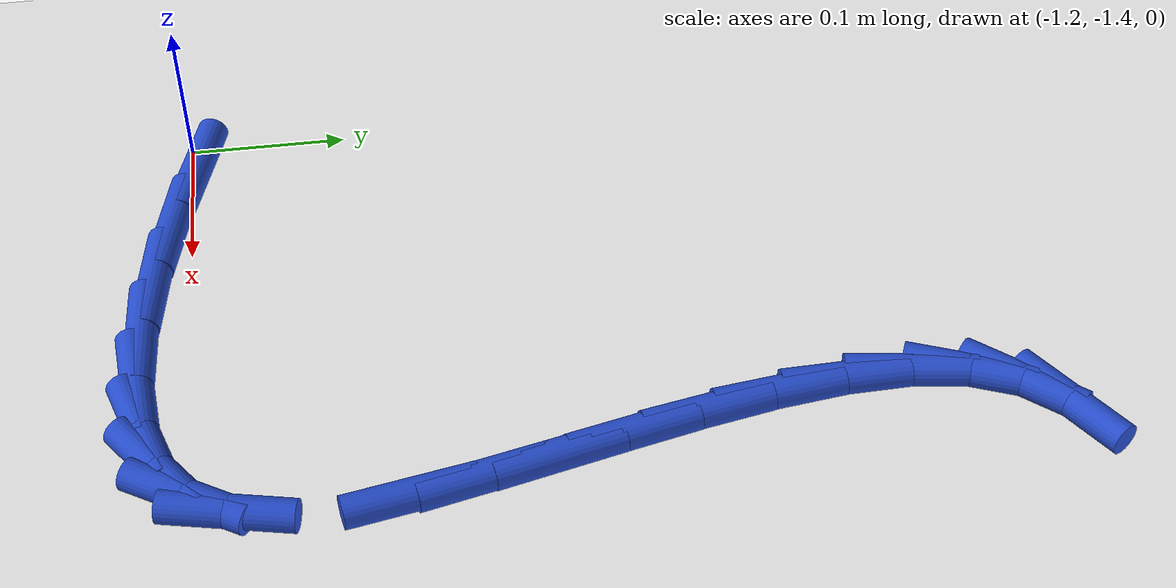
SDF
<sdf version="1.6">
 <world name="default">
  <model name="ground_plane">
   <static>1</static>
   <link name="link">
    <collision name="collision">
     <geometry><plane><normal>0 0 1</normal><size>100 100</size></plane></geometry>
     <surface><friction><ode><mu>100</mu><mu2>50</mu2></ode></friction></surface>
    </collision>
    <visual name="visual">
     <cast_shadows>0</cast_shadows>
     <geometry><plane><normal>0 0 1</normal><size>100 100</size></plane></geometry>
     <material>
      <script><uri>file://media/materials/scripts/gazebo.material</uri><name>Gazebo/WhiteGlow</name></script>
     </material>
    </visual>
   </link>
  </model>
  <model name="line">
   <link name="link_173">
    <pose>-1.1717716815666144 -1.3960691600241606 0.01 0 1.57 -0.27798999492897586</pose>
    <collision name="collision">
     <geometry><cylinder><radius>0.01</radius><length>0.08</length></cylinder></geometry>
    </collision>
    <visual name="visual">
     <material>
      <script><name>Gazebo/Blue</name><uri>file://media/materials/scripts/gazebo.material</uri></script>
     </material>
     <geometry><cylinder><radius>0.01</radius><length>0.08</length></cylinder></geometry>
    </visual>
   </link>
   <link name="link_174">
    <pose>-1.119132558086076 -1.4110912800550894 0.01 0 1.57 -0.2193022655108128</pose>
    <collision name="collision">
     <geometry><cylinder><radius>0.01</radius><length>0.08</length></cylinder></geometry>
    </collision>
    <visual name="visual">
     <material>
      <script><name>Gazebo/Blue</name><uri>file://media/materials/scripts/gazebo.material</uri></script>
     </material>
     <geometry><cylinder><radius>0.01</radius><length>0.08</length></cylinder></geometry>
    </visual>
   </link>
   <link name="link_175">
    <pose>-1.0695712296157478 -1.4221378514400227 0.01 0 1.57 -0.1434673952442871</pose>
    <collision name="collision">
     <geometry><cylinder><radius>0.01</radius><length>0.08</length></cylinder></geometry>
    </collision>
    <visual name="visual">
     <material>
      <script><name>Gazebo/Blue</name><uri>file://media/materials/scripts/gazebo.material</uri></script>
     </material>
     <geometry><cylinder><radius>0.01</radius><length>0.08</length></cylinder></geometry>
    </visual>
   </link>
   <link name="link_176">
    <pose>-1.0239005571564284 -1.4287354318572123 0.01 0 1.57 -0.040867237029483514</pose>
    <collision name="collision">
     <geometry><cylinder><radius>0.01</radius><length>0.08</length></cylinder></geometry>
    </collision>
    <visual name="visual">
     <material>
      <script><name>Gazebo/Blue</name><uri>file://media/materials/scripts/gazebo.material</uri></script>
     </material>
     <geometry><cylinder><radius>0.01</radius><length>0.08</length></cylinder></geometry>
    </visual>
   </link>
   <link name="link_177">
    <pose>-0.9829334017089127 -1.4304105789849113 0.01 0 1.57 0.104571928779439</pose>
    <collision name="collision">
     <geometry><cylinder><radius>0.01</radius><length>0.08</length></cylinder></geometry>
    </collision>
    <visual name="visual">
     <material>
      <script><name>Gazebo/Blue</name><uri>file://media/materials/scripts/gazebo.material</uri></script>
     </material>
     <geometry><cylinder><radius>0.01</radius><length>0.08</length></cylinder></geometry>
    </visual>
   </link>
   <link name="link_178">
    <pose>-0.9474826242739983 -1.4266898505013732 0.01 0 1.57 0.31812620434267685</pose>
    <collision name="collision">
     <geometry><cylinder><radius>0.01</radius><length>0.08</length></cylinder></geometry>
    </collision>
    <visual name="visual">
     <material>
      <script><name>Gazebo/Blue</name><uri>file://media/materials/scripts/gazebo.material</uri></script>
     </material>
     <geometry><cylinder><radius>0.01</radius><length>0.08</length></cylinder></geometry>
    </visual>
   </link>
   <link name="link_179">
    <pose>-0.9183610858524801 -1.4170998040848495 0.01 0 1.57 0.627240010804283</pose>
    <collision name="collision">
     <geometry><cylinder><radius>0.01</radius><length>0.08</length></cylinder></geometry>
    </collision>
    <visual name="visual">
     <material>
      <script><name>Gazebo/Blue</name><uri>file://media/materials/scripts/gazebo.material</uri></script>
     </material>
     <geometry><cylinder><radius>0.01</radius><length>0.08</length></cylinder></geometry>
    </visual>
   </link>
   <link name="link_180">
    <pose>-0.8963816474451564 -1.4011669974135939 0.01 0 1.57 1.0149470497144364</pose>
    <collision name="collision">
     <geometry><cylinder><radius>0.01</radius><length>0.08</length></cylinder></geometry>
    </collision>
    <visual name="visual">
     <material>
      <script><name>Gazebo/Blue</name><uri>file://media/materials/scripts/gazebo.material</uri></script>
     </material>
     <geometry><cylinder><radius>0.01</radius><length>0.08</length></cylinder></geometry>
    </visual>
   </link>
   <link name="link_181">
    <pose>-0.8822832094598768 -1.378470860652521 0.01 0 1.57 1.3467073489451822</pose>
    <collision name="collision">
     <geometry><cylinder><radius>0.01</radius><length>0.08</length></cylinder></geometry>
    </collision>
    <visual name="visual">
     <material>
      <script><name>Gazebo/Blue</name><uri>file://media/materials/scripts/gazebo.material</uri></script>
     </material>
     <geometry><cylinder><radius>0.01</radius><length>0.08</length></cylinder></geometry>
    </visual>
   </link>
   <link name="link_184">
    <pose>-0.8795818273732997 -1.2763778359811406 0.01 0 1.57 -1.3846462124972279</pose>
    <collision name="collision">
     <geometry><cylinder><radius>0.01</radius><length>0.08</length></cylinder></geometry>
    </collision>
    <visual name="visual">
     <material>
      <script><name>Gazebo/Blue</name><uri>file://media/materials/scripts/gazebo.material</uri></script>
     </material>
     <geometry><cylinder><radius>0.01</radius><length>0.08</length></cylinder></geometry>
    </visual>
   </link>
   <link name="link_185">
    <pose>-0.8874635113759242 -1.2345275546880803 0.01 0 1.57 -1.346149637953403</pose>
    <collision name="collision">
     <geometry><cylinder><radius>0.01</radius><length>0.08</length></cylinder></geometry>
    </collision>
    <visual name="visual">
     <material>
      <script><name>Gazebo/Blue</name><uri>file://media/materials/scripts/gazebo.material</uri></script>
     </material>
     <geometry><cylinder><radius>0.01</radius><length>0.08</length></cylinder></geometry>
    </visual>
   </link>
   <link name="link_186">
    <pose>-0.8975161618901223 -1.1905341500405366 0.01 0 1.57 -1.3337171935542973</pose>
    <collision name="collision">
     <geometry><cylinder><radius>0.01</radius><length>0.08</length></cylinder></geometry>
    </collision>
    <visual name="visual">
     <material>
      <script><name>Gazebo/Blue</name><uri>file://media/materials/scripts/gazebo.material</uri></script>
     </material>
     <geometry><cylinder><radius>0.01</radius><length>0.08</length></cylinder></geometry>
    </visual>
   </link>
   <link name="link_187">
    <pose>-0.9084077154133938 -1.1454575299465994 0.01 0 1.57 -1.3441929032482047</pose>
    <collision name="collision">
     <geometry><cylinder><radius>0.01</radius><length>0.08</length></cylinder></geometry>
    </collision>
    <visual name="visual">
     <material>
      <script><name>Gazebo/Blue</name><uri>file://media/materials/scripts/gazebo.material</uri></script>
     </material>
     <geometry><cylinder><radius>0.01</radius><length>0.08</length></cylinder></geometry>
    </visual>
   </link>
   <link name="link_188">
    <pose>-0.9188061084432378 -1.1003576023143578 0.01 0 1.57 -1.3786324161482362</pose>
    <collision name="collision">
     <geometry><cylinder><radius>0.01</radius><length>0.08</length></cylinder></geometry>
    </collision>
    <visual name="visual">
     <material>
      <script><name>Gazebo/Blue</name><uri>file://media/materials/scripts/gazebo.material</uri></script>
     </material>
     <geometry><cylinder><radius>0.01</radius><length>0.08</length></cylinder></geometry>
    </visual>
   </link>
   <link name="link_189">
    <pose>-0.9273792774771537 -1.0562942750519047 0.01 0 1.57 -1.442454158385933</pose>
    <collision name="collision">
     <geometry><cylinder><radius>0.01</radius><length>0.08</length></cylinder></geometry>
    </collision>
    <visual name="visual">
     <material>
      <script><name>Gazebo/Blue</name><uri>file://media/materials/scripts/gazebo.material</uri></script>
     </material>
     <geometry><cylinder><radius>0.01</radius><length>0.08</length></cylinder></geometry>
    </visual>
   </link>
   <link name="link_190">
    <pose>-0.9327951590126402 -1.0143274560673277 0.01 0 1.57 -1.5469276084082857</pose>
    <collision name="collision">
     <geometry><cylinder><radius>0.01</radius><length>0.08</length></cylinder></geometry>
    </collision>
    <visual name="visual">
     <material>
      <script><name>Gazebo/Blue</name><uri>file://media/materials/scripts/gazebo.material</uri></script>
     </material>
     <geometry><cylinder><radius>0.01</radius><length>0.08</length></cylinder></geometry>
    </visual>
   </link>
   <link name="link_191">
    <pose>-0.9337216895471971 -0.9755170532687177 0.01 0 1.57 1.4302345733028266</pose>
    <collision name="collision">
     <geometry><cylinder><radius>0.01</radius><length>0.08</length></cylinder></geometry>
    </collision>
    <visual name="visual">
     <material>
      <script><name>Gazebo/Blue</name><uri>file://media/materials/scripts/gazebo.material</uri></script>
     </material>
     <geometry><cylinder><radius>0.01</radius><length>0.08</length></cylinder></geometry>
    </visual>
   </link>
   <link name="link_192">
    <pose>-0.9288268055783234 -0.9409229745641637 0.01 0 1.57 1.1808804523126677</pose>
    <collision name="collision">
     <geometry><cylinder><radius>0.01</radius><length>0.08</length></cylinder></geometry>
    </collision>
    <visual name="visual">
     <material>
      <script><name>Gazebo/Blue</name><uri>file://media/materials/scripts/gazebo.material</uri></script>
     </material>
     <geometry><cylinder><radius>0.01</radius><length>0.08</length></cylinder></geometry>
    </visual>
   </link>
   <link name="link_193">
    <pose>-0.9167784436035189 -0.9116051278617578 0.01 0 1.57 0.8585164078698625</pose>
    <collision name="collision">
     <geometry><cylinder><radius>0.01</radius><length>0.08</length></cylinder></geometry>
    </collision>
    <visual name="visual">
     <material>
      <script><name>Gazebo/Blue</name><uri>file://media/materials/scripts/gazebo.material</uri></script>
     </material>
     <geometry><cylinder><radius>0.01</radius><length>0.08</length></cylinder></geometry>
    </visual>
   </link>
   <link name="link_194">
    <pose>-0.8966518147415801 -0.888296950374588 0.01 0 1.57 0.5805518359492522</pose>
    <collision name="collision">
     <geometry><cylinder><radius>0.01</radius><length>0.08</length></cylinder></geometry>
    </collision>
    <visual name="visual">
     <material>
      <script><name>Gazebo/Blue</name><uri>file://media/materials/scripts/gazebo.material</uri></script>
     </material>
     <geometry><cylinder><radius>0.01</radius><length>0.08</length></cylinder></geometry>
    </visual>
   </link>
  </model>
 </world>
</sdf>
